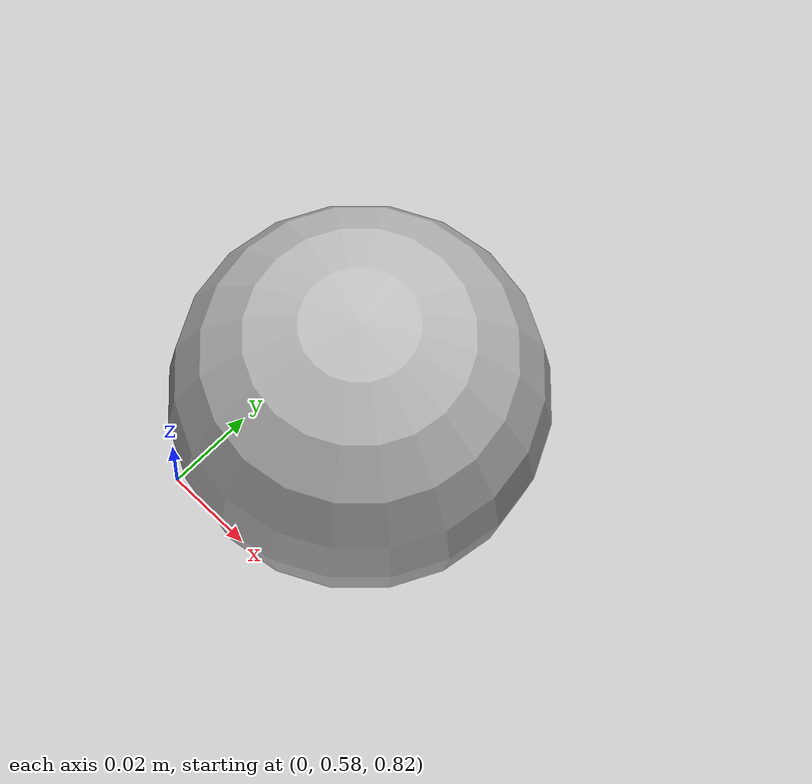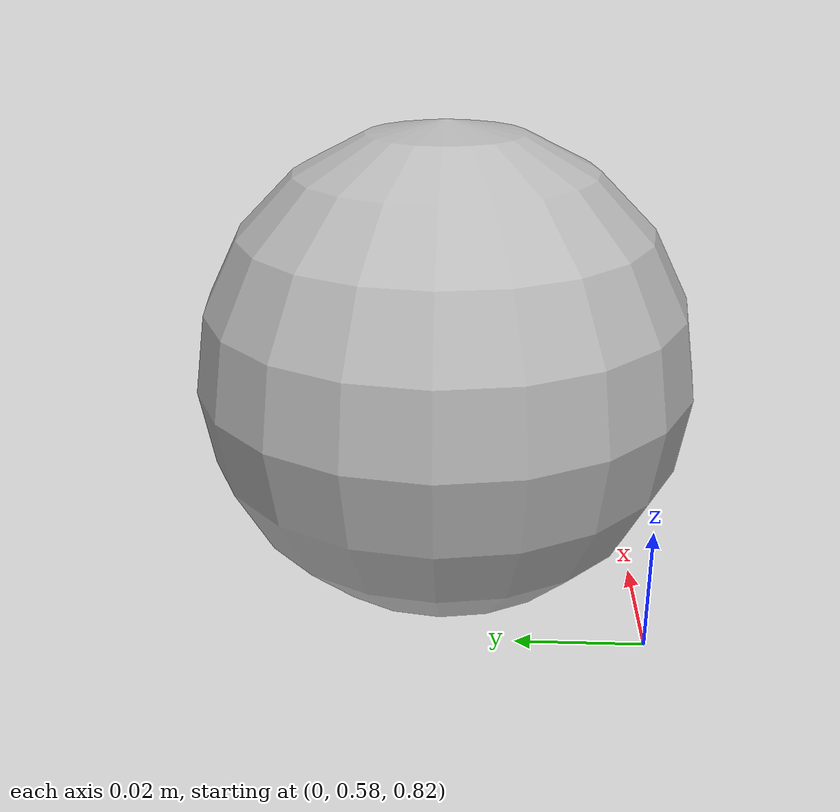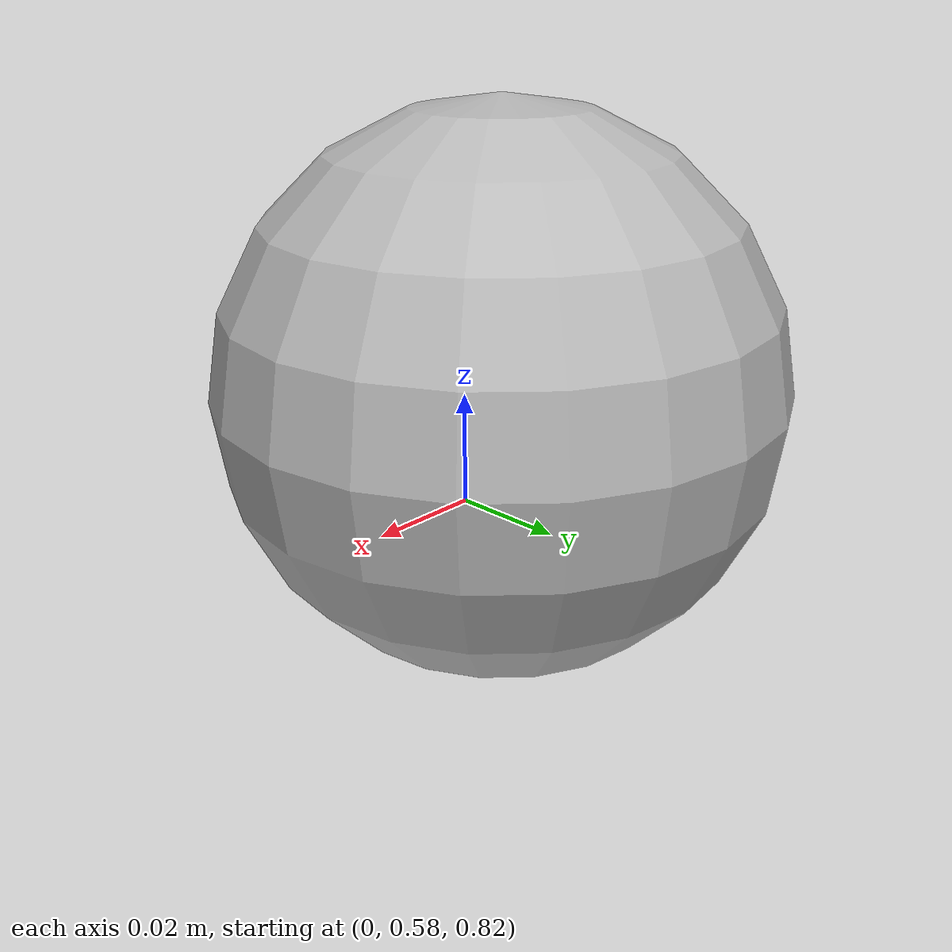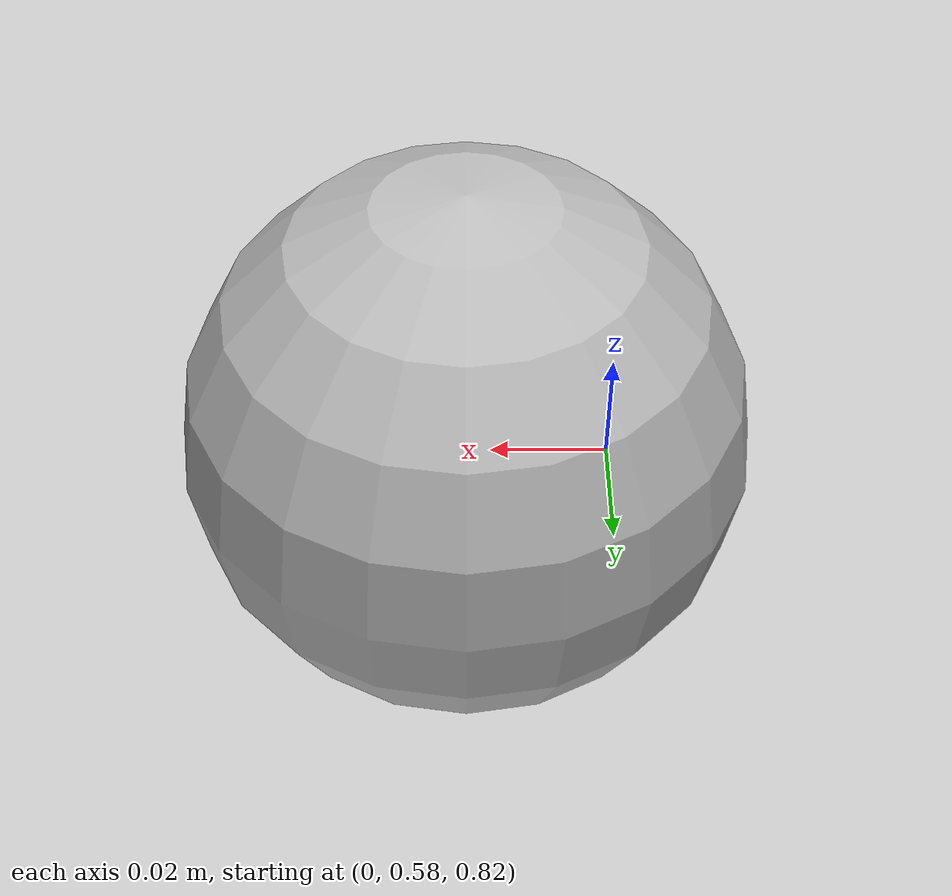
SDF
<?xml version='1.0'?>
<sdf version='1.6'>
  <model name="ball">
    <pose>0.024255 0.611646 0.855967 0 0 0</pose>
    <static>true</static>
    <link name="link">
      <collision name="collision">
        <geometry>
          <sphere>
            <radius>0.04</radius>
          </sphere>
        </geometry>
      </collision>
      <visual name="visual">
        <geometry>
          <sphere>
            <radius>0.04</radius>
          </sphere>
        </geometry>
      </visual>
      <inertial>
        <mass>0.1</mass>
      </inertial>
    </link>
  </model>
</sdf>
